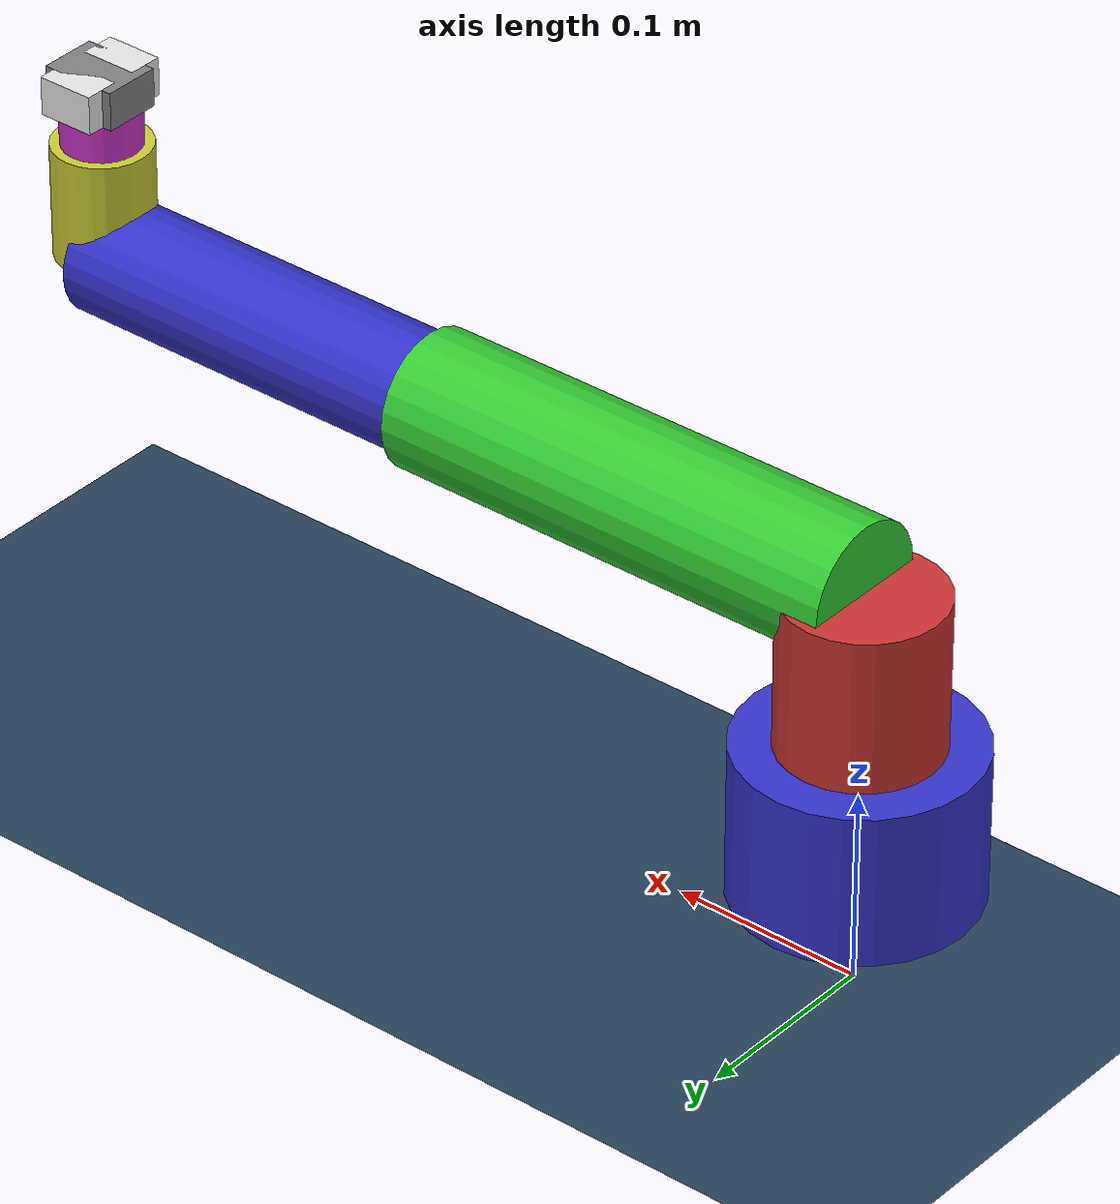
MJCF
<mujoco model="5dof_arm">
  <compiler angle="radian" autolimits="true"/>

  <default>
    <joint armature="0.1" damping="3" limited="true"/>
    <geom condim="4" friction="5 0.5 0.01" conaffinity="1"/>
    <motor ctrllimited="true" ctrlrange="-1 1"/>
  </default>

  <asset>
    <texture builtin="gradient" height="100" rgb1="0.8 0.6 0.4" rgb2="0.6 0.4 0.2" type="skybox" width="100"/>
    <texture builtin="checker" height="100" name="texplane" rgb1="0.2 0.3 0.4" rgb2="0.1 0.2 0.3" type="2d" width="100"/>
    <material name="MatPlane" reflectance="0.5" shininess="1" specular="1" texrepeat="60 60" texture="texplane"/>
  </asset>

  <worldbody>
    <light cutoff="100" diffuse="1 1 1" dir="-0 0 -1.3" directional="true" exponent="1" pos="0 0 1.3" specular=".1 .1 .1"/>
    <geom conaffinity="1" condim="3" material="MatPlane" name="floor" pos="0 0 0" size="0 0 0.05" type="plane"/>

    <body name="base" pos="0 0 0.05">
      <geom fromto="0 0 0 0 0 0.08" name="base_link" size="0.06" type="cylinder" rgba="0.2 0.2 0.8 1"/>

      <body name="link1" pos="0 0 0.08">
        <joint axis="0 0 1" name="joint1" range="-3.14 3.14" type="hinge"/>
        <geom fromto="0 0 0 0 0 0.08" name="link1_geom" size="0.04" type="cylinder" rgba="0.8 0.2 0.2 1"/>

        <body name="link2" pos="0 0 0.08">
          <joint axis="0 1 0" name="joint2" range="-1.8 1.8" type="hinge"/>
          <geom fromto="0 0 0 0.25 0 0" name="link2_geom" size="0.035" type="cylinder" rgba="0.2 0.8 0.2 1"/>

          <body name="link3" pos="0.25 0 0">
            <joint axis="0 1 0" name="joint3" range="-3.0 3.0" type="hinge"/>
            <geom fromto="0 0 0 0.2 0 0" name="link3_geom" size="0.03" type="cylinder" rgba="0.2 0.2 0.8 1"/>

            <body name="link4" pos="0.2 0 0">
              <joint axis="1 0 0" name="joint4" range="-2.0 2.0" type="hinge"/>
              <geom fromto="0 0 0 0 0 0.06" name="link4_geom" size="0.025" type="cylinder" rgba="0.8 0.8 0.2 1"/>

              <body name="link5" pos="0 0 0.06">
                <joint axis="0 0 1" name="joint5" range="-3.14 3.14" type="hinge"/>
                <geom fromto="0 0 0 0 0 0.03" name="link5_geom" size="0.02" type="cylinder" rgba="0.8 0.2 0.8 1"/>

                <!-- Gripper: two fingers slide along y-axis (perpendicular to arm) -->
                <body name="gripper_base" pos="0 0 0.03">
                  <geom name="gripper_base_geom" size="0.02 0.015 0.01" type="box" rgba="0.5 0.5 0.5 1"/>

                  <!-- Left finger: slides in +y direction, geom extends inward -->
                  <body name="left_finger" pos="0 0.012 0">
                    <joint axis="0 1 0" name="finger_left" range="-0.005 0.025" type="slide"/>
                    <geom name="left_finger_geom" pos="0 0.003 0" size="0.015 0.009 0.01" type="box" rgba="0.9 0.9 0.9 1"/>
                  </body>

                  <!-- Right finger: slides in -y direction, geom extends inward -->
                  <body name="right_finger" pos="0 -0.012 0">
                    <joint axis="0 1 0" name="finger_right" range="-0.025 0.005" type="slide"/>
                    <geom name="right_finger_geom" pos="0 -0.003 0" size="0.015 0.009 0.01" type="box" rgba="0.9 0.9 0.9 1"/>
                  </body>

                  <!-- End effector site at gripper center -->
                  <site name="end_effector" pos="0 0 0" size="0.005"/>
                </body>
              </body>
            </body>
          </body>
        </body>
      </body>
    </body>
  </worldbody>

  <actuator>
    <motor gear="50" joint="joint1" name="act_joint1"/>
    <motor gear="50" joint="joint2" name="act_joint2"/>
    <motor gear="30" joint="joint3" name="act_joint3"/>
    <motor gear="20" joint="joint4" name="act_joint4"/>
    <motor gear="10" joint="joint5" name="act_joint5"/>
    <motor gear="50" joint="finger_left" name="act_finger_left"/>
    <motor gear="50" joint="finger_right" name="act_finger_right"/>
  </actuator>
</mujoco>
